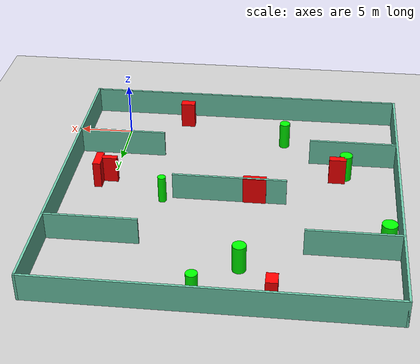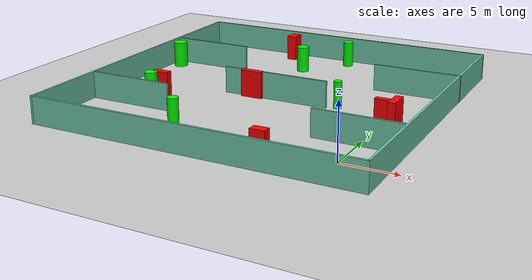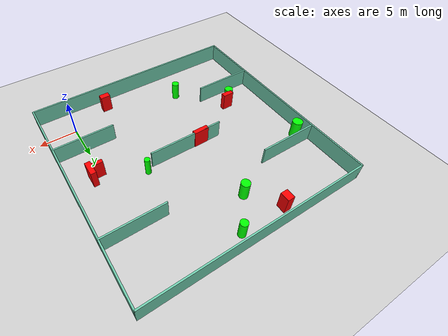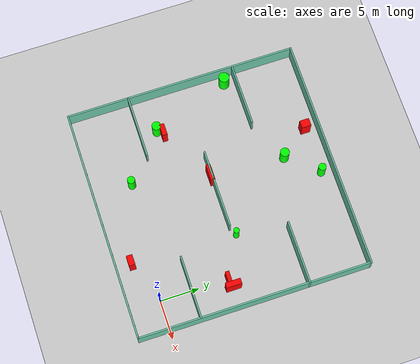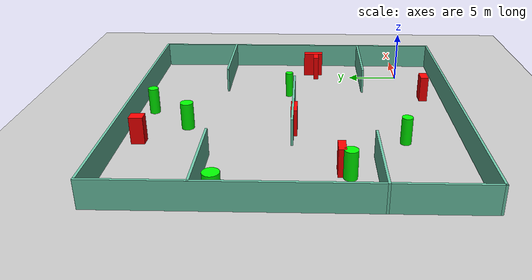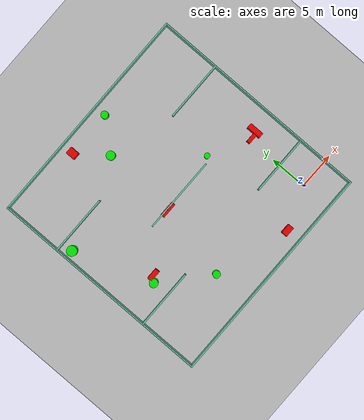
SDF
<sdf version="1.7">
 <world name="default">
  <light name="sun" type="directional">
   <pose>0 0 10 0 -0 0</pose>
   <diffuse>0.8 0.8 0.8 1</diffuse>
   <specular>0.2 0.2 0.2 1</specular>
   <attenuation>
    <range>1000</range>
    <constant>0.9</constant>
    <linear>0.01</linear>
    <quadratic>0.001</quadratic>
   </attenuation>
   <direction>-0.5 0.1 -0.9</direction>
   <spot><inner_angle>0</inner_angle><outer_angle>0</outer_angle><falloff>0</falloff></spot>
  </light>
  <model name="ground_plane">
   <static>1</static>
   <link name="link">
    <collision name="collision">
     <geometry><plane><normal>0 0 1</normal><size>100 100</size></plane></geometry>
     <surface>
      <contact><collide_bitmask>65535</collide_bitmask></contact>
      <friction><ode><mu>100</mu><mu2>50</mu2></ode></friction>
     </surface>
    </collision>
    <visual name="visual">
     <cast_shadows>0</cast_shadows>
     <geometry><plane><normal>0 0 1</normal><size>100 100</size></plane></geometry>
     <material>
      <script><uri>file://media/materials/scripts/gazebo.material</uri><name>Gazebo/Grey</name></script>
     </material>
    </visual>
   </link>
  </model>
  <gravity>0 0 -9.8</gravity>
  <magnetic_field>6e-06 2.3e-05 -4.2e-05</magnetic_field>
  <atmosphere type="adiabatic"/>
  <physics type="ode">
   <max_step_size>0.001</max_step_size>
   <real_time_factor>1</real_time_factor>
   <real_time_update_rate>1000</real_time_update_rate>
  </physics>
  <scene><ambient>0.4 0.4 0.4 1</ambient><background>0.7 0.7 0.7 1</background><shadows>1</shadows></scene>
  <spherical_coordinates>
   <surface_model>EARTH_WGS84</surface_model>
   <latitude_deg>0</latitude_deg>
   <longitude_deg>0</longitude_deg>
   <elevation>0</elevation>
   <heading_deg>0</heading_deg>
  </spherical_coordinates>
  <model name="my_base_walls">
   <link name="Wall_10">
    <collision name="Wall_10_Collision">
     <geometry><box><size>8.2 0.2 2.5</size></box></geometry>
     <pose>0 0 1.25 0 -0 0</pose>
    </collision>
    <visual name="Wall_10_Visual">
     <pose>0 0 1.25 0 -0 0</pose>
     <geometry><box><size>8.2 0.2 2.5</size></box></geometry>
     <material>
      <script><uri>file://media/materials/scripts/gazebo.material</uri><name>Gazebo/Grey</name></script>
      <ambient>0.435294 0.796078 0.67451 1</ambient>
     </material>
     <meta><layer>0</layer></meta>
    </visual>
    <pose>-11 -7 0 0 -0 0</pose>
   </link>
   <link name="Wall_12">
    <collision name="Wall_12_Collision">
     <geometry><box><size>8.2 0.2 2.5</size></box></geometry>
     <pose>0 0 1.25 0 -0 0</pose>
    </collision>
    <visual name="Wall_12_Visual">
     <pose>0 0 1.25 0 -0 0</pose>
     <geometry><box><size>8.2 0.2 2.5</size></box></geometry>
     <material>
      <script><uri>file://media/materials/scripts/gazebo.material</uri><name>Gazebo/Grey</name></script>
      <ambient>0.435294 0.796078 0.67451 1</ambient>
     </material>
     <meta><layer>0</layer></meta>
    </visual>
    <pose>-11 7 0 0 -0 0</pose>
   </link>
   <link name="Wall_14">
    <collision name="Wall_14_Collision">
     <geometry><box><size>8.2 0.2 2.5</size></box></geometry>
     <pose>0 0 1.25 0 -0 0</pose>
    </collision>
    <visual name="Wall_14_Visual">
     <pose>0 0 1.25 0 -0 0</pose>
     <geometry><box><size>8.2 0.2 2.5</size></box></geometry>
     <material>
      <script><uri>file://media/materials/scripts/gazebo.material</uri><name>Gazebo/Grey</name></script>
      <ambient>0.435294 0.796078 0.67451 1</ambient>
     </material>
     <meta><layer>0</layer></meta>
    </visual>
    <pose>11 7 0 0 -0 3.14159</pose>
   </link>
   <link name="Wall_16">
    <collision name="Wall_16_Collision">
     <geometry><box><size>10.2 0.2 2.5</size></box></geometry>
     <pose>0 0 1.25 0 -0 0</pose>
    </collision>
    <visual name="Wall_16_Visual">
     <pose>0 0 1.25 0 -0 0</pose>
     <geometry><box><size>10.2 0.2 2.5</size></box></geometry>
     <material>
      <script><uri>file://media/materials/scripts/gazebo.material</uri><name>Gazebo/Grey</name></script>
      <ambient>0.435294 0.796078 0.67451 1</ambient>
     </material>
     <meta><layer>0</layer></meta>
    </visual>
    <pose>0 0 0 0 -0 3.14159</pose>
   </link>
   <link name="Wall_2">
    <collision name="Wall_2_Collision">
     <geometry><box><size>30.2 0.2 2.5</size></box></geometry>
     <pose>0 0 1.25 0 -0 0</pose>
    </collision>
    <visual name="Wall_2_Visual">
     <pose>0 0 1.25 0 -0 0</pose>
     <geometry><box><size>30.2 0.2 2.5</size></box></geometry>
     <material>
      <script><uri>file://media/materials/scripts/gazebo.material</uri><name>Gazebo/Grey</name></script>
      <ambient>0.435294 0.796078 0.67451 1</ambient>
     </material>
     <meta><layer>0</layer></meta>
    </visual>
    <pose>0 -15 0 0 -0 3.14159</pose>
   </link>
   <link name="Wall_3">
    <collision name="Wall_3_Collision">
     <geometry><box><size>30.2 0.2 2.5</size></box></geometry>
     <pose>0 0 1.25 0 -0 0</pose>
    </collision>
    <visual name="Wall_3_Visual">
     <pose>0 0 1.25 0 -0 0</pose>
     <geometry><box><size>30.2 0.2 2.5</size></box></geometry>
     <material>
      <script><uri>file://media/materials/scripts/gazebo.material</uri><name>Gazebo/Grey</name></script>
      <ambient>0.435294 0.796078 0.67451 1</ambient>
     </material>
     <meta><layer>0</layer></meta>
    </visual>
    <pose>-15 0 0 0 -0 1.5708</pose>
   </link>
   <link name="Wall_4">
    <collision name="Wall_4_Collision">
     <geometry><box><size>30.2 0.2 2.5</size></box></geometry>
     <pose>0 0 1.25 0 -0 0</pose>
    </collision>
    <visual name="Wall_4_Visual">
     <pose>0 0 1.25 0 -0 0</pose>
     <geometry><box><size>30.2 0.2 2.5</size></box></geometry>
     <material>
      <script><uri>file://media/materials/scripts/gazebo.material</uri><name>Gazebo/Grey</name></script>
      <ambient>0.435294 0.796078 0.67451 1</ambient>
     </material>
     <meta><layer>0</layer></meta>
    </visual>
    <pose>0 15 0 0 -0 0</pose>
   </link>
   <link name="Wall_6">
    <collision name="Wall_6_Collision">
     <geometry><box><size>30.2 0.2 2.5</size></box></geometry>
     <pose>0 0 1.25 0 -0 0</pose>
    </collision>
    <visual name="Wall_6_Visual">
     <pose>0 0 1.25 0 -0 0</pose>
     <geometry><box><size>30.2 0.2 2.5</size></box></geometry>
     <material>
      <script><uri>file://media/materials/scripts/gazebo.material</uri><name>Gazebo/Grey</name></script>
      <ambient>0.435294 0.796078 0.67451 1</ambient>
     </material>
     <meta><layer>0</layer></meta>
    </visual>
    <pose>15 0 0 0 -0 1.5708</pose>
   </link>
   <link name="Wall_8">
    <collision name="Wall_8_Collision">
     <geometry><box><size>8.2 0.2 2.5</size></box></geometry>
     <pose>0 0 1.25 0 -0 0</pose>
    </collision>
    <visual name="Wall_8_Visual">
     <pose>0 0 1.25 0 -0 0</pose>
     <geometry><box><size>8.2 0.2 2.5</size></box></geometry>
     <material>
      <script><uri>file://media/materials/scripts/gazebo.material</uri><name>Gazebo/Grey</name></script>
      <ambient>0.435294 0.796078 0.67451 1</ambient>
     </material>
     <meta><layer>0</layer></meta>
    </visual>
    <pose>11 -7 0 0 -0 3.14159</pose>
   </link>
   <static>1</static>
   <pose>-11 11 0 0 -0 0</pose>
  </model>
  <model name="cylinder1">
   <static>1</static>
   <link name="link">
    <inertial>
     <mass>1</mass>
     <inertia><ixx>0.5</ixx><ixy>0</ixy><ixz>0</ixz><iyy>0.5</iyy><iyz>0</iyz><izz>1</izz></inertia>
    </inertial>
    <collision name="collision">
     <geometry><cylinder><radius>0.577838131795787</radius><length>2.5</length></cylinder></geometry>
    </collision>
    <visual name="visual">
     <geometry><cylinder><radius>0.577838131795787</radius><length>2.5</length></cylinder></geometry>
     <material>
      <ambient>0 1 0 1</ambient>
      <diffuse>0 1 0 1</diffuse>
      <specular>0.1 0.1 0.1 1</specular>
      <emissive>0 0 0 0</emissive>
     </material>
    </visual>
   </link>
   <pose>-21.28635584616646 6.295024676102432 1.25 0 0 0</pose>
  </model>
  <model name="cylinder2">
   <static>1</static>
   <link name="link">
    <inertial>
     <mass>1</mass>
     <inertia><ixx>0.5</ixx><ixy>0</ixy><ixz>0</ixz><iyy>0.5</iyy><iyz>0</iyz><izz>1</izz></inertia>
    </inertial>
    <collision name="collision">
     <geometry><cylinder><radius>0.6755026305995573</radius><length>2.5</length></cylinder></geometry>
    </collision>
    <visual name="visual">
     <geometry><cylinder><radius>0.6755026305995573</radius><length>2.5</length></cylinder></geometry>
     <material>
      <ambient>0 1 0 1</ambient>
      <diffuse>0 1 0 1</diffuse>
      <specular>0.1 0.1 0.1 1</specular>
      <emissive>0 0 0 0</emissive>
     </material>
    </visual>
   </link>
   <pose>-24.868691661851226 16.55047769824798 1.25 0 0 0</pose>
  </model>
  <model name="cylinder3">
   <static>1</static>
   <link name="link">
    <inertial>
     <mass>1</mass>
     <inertia><ixx>0.5</ixx><ixy>0</ixy><ixz>0</ixz><iyy>0.5</iyy><iyz>0</iyz><izz>1</izz></inertia>
    </inertial>
    <collision name="collision">
     <geometry><cylinder><radius>0.5834756766172156</radius><length>2.5</length></cylinder></geometry>
    </collision>
    <visual name="visual">
     <geometry><cylinder><radius>0.5834756766172156</radius><length>2.5</length></cylinder></geometry>
     <material>
      <ambient>0 1 0 1</ambient>
      <diffuse>0 1 0 1</diffuse>
      <specular>0.1 0.1 0.1 1</specular>
      <emissive>0 0 0 0</emissive>
     </material>
    </visual>
   </link>
   <pose>-12.804406371405086 20.61716614733745 1.25 0 0 0</pose>
  </model>
  <model name="cylinder4">
   <static>1</static>
   <link name="link">
    <inertial>
     <mass>1</mass>
     <inertia><ixx>0.5</ixx><ixy>0</ixy><ixz>0</ixz><iyy>0.5</iyy><iyz>0</iyz><izz>1</izz></inertia>
    </inertial>
    <collision name="collision">
     <geometry><cylinder><radius>0.3667335242690395</radius><length>2.5</length></cylinder></geometry>
    </collision>
    <visual name="visual">
     <geometry><cylinder><radius>0.3667335242690395</radius><length>2.5</length></cylinder></geometry>
     <material>
      <ambient>0 1 0 1</ambient>
      <diffuse>0 1 0 1</diffuse>
      <specular>0.1 0.1 0.1 1</specular>
      <emissive>0 0 0 0</emissive>
     </material>
    </visual>
   </link>
   <pose>-5.046944566420613 11.563949356899979 1.25 0 0 0</pose>
  </model>
  <model name="cylinder5">
   <static>1</static>
   <link name="link">
    <inertial>
     <mass>1</mass>
     <inertia><ixx>0.5</ixx><ixy>0</ixy><ixz>0</ixz><iyy>0.5</iyy><iyz>0</iyz><izz>1</izz></inertia>
    </inertial>
    <collision name="collision">
     <geometry><cylinder><radius>0.48666996521660777</radius><length>2.5</length></cylinder></geometry>
    </collision>
    <visual name="visual">
     <geometry><cylinder><radius>0.48666996521660777</radius><length>2.5</length></cylinder></geometry>
     <material>
      <ambient>0 1 0 1</ambient>
      <diffuse>0 1 0 1</diffuse>
      <specular>0.1 0.1 0.1 1</specular>
      <emissive>0 0 0 0</emissive>
     </material>
    </visual>
   </link>
   <pose>-15.392036759427677 1.1125068633052058 1.25 0 0 0</pose>
  </model>
  <model name="cylinder6">
   <static>1</static>
   <link name="link">
    <inertial>
     <mass>1</mass>
     <inertia><ixx>0.5</ixx><ixy>0</ixy><ixz>0</ixz><iyy>0.5</iyy><iyz>0</iyz><izz>1</izz></inertia>
    </inertial>
    <collision name="collision">
     <geometry><cylinder><radius>0.48807632131644263</radius><length>2.5</length></cylinder></geometry>
    </collision>
    <visual name="visual">
     <geometry><cylinder><radius>0.48807632131644263</radius><length>2.5</length></cylinder></geometry>
     <material>
      <ambient>0 1 0 1</ambient>
      <diffuse>0 1 0 1</diffuse>
      <specular>0.1 0.1 0.1 1</specular>
      <emissive>0 0 0 0</emissive>
     </material>
    </visual>
   </link>
   <pose>-9.488028645240234 24.461081410456913 1.25 0 0 0</pose>
  </model>
  <model name="box1">
   <static>1</static>
   <link name="link">
    <inertial>
     <mass>1</mass>
     <inertia><ixx>0.083</ixx><ixy>0</ixy><ixz>0</ixz><iyy>0.083</iyy><iyz>0</iyz><izz>0.083</izz></inertia>
    </inertial>
    <collision name="collision">
     <geometry><box><size>0.7025118786147131 1.9710586920414839 2.5</size></box></geometry>
    </collision>
    <visual name="visual">
     <geometry><box><size>0.7025118786147131 1.9710586920414839 2.5</size></box></geometry>
     <material>
      <ambient>1 0 0 1</ambient>
      <diffuse>1 0 0 1</diffuse>
      <specular>0.1 0.1 0.1 1</specular>
      <emissive>0 0 0 0</emissive>
     </material>
    </visual>
    <sensor name="my_contact" type="contact">
     <contact><collision>box_collision</collision><topic>__default_topic__</topic></contact>
    </sensor>
   </link>
   <pose>1.1720972139310675 9.088979155637057 1.25 0 0 0</pose>
  </model>
  <model name="box2">
   <static>1</static>
   <link name="link">
    <inertial>
     <mass>1</mass>
     <inertia><ixx>0.083</ixx><ixy>0</ixy><ixz>0</ixz><iyy>0.083</iyy><iyz>0</iyz><izz>0.083</izz></inertia>
    </inertial>
    <collision name="collision">
     <geometry><box><size>1.532161234006696 0.6420770019590929 2.5</size></box></geometry>
    </collision>
    <visual name="visual">
     <geometry><box><size>1.532161234006696 0.6420770019590929 2.5</size></box></geometry>
     <material>
      <ambient>1 0 0 1</ambient>
      <diffuse>1 0 0 1</diffuse>
      <specular>0.1 0.1 0.1 1</specular>
      <emissive>0 0 0 0</emissive>
     </material>
    </visual>
    <sensor name="my_contact" type="contact">
     <contact><collision>box_collision</collision><topic>__default_topic__</topic></contact>
    </sensor>
   </link>
   <pose>-20.53763593675525 6.97018510133603 1.25 0 0 0</pose>
  </model>
  <model name="box3">
   <static>1</static>
   <link name="link">
    <inertial>
     <mass>1</mass>
     <inertia><ixx>0.083</ixx><ixy>0</ixy><ixz>0</ixz><iyy>0.083</iyy><iyz>0</iyz><izz>0.083</izz></inertia>
    </inertial>
    <collision name="collision">
     <geometry><box><size>1.3809324408429613 0.5036149738929323 2.5</size></box></geometry>
    </collision>
    <visual name="visual">
     <geometry><box><size>1.3809324408429613 0.5036149738929323 2.5</size></box></geometry>
     <material>
      <ambient>1 0 0 1</ambient>
      <diffuse>1 0 0 1</diffuse>
      <specular>0.1 0.1 0.1 1</specular>
      <emissive>0 0 0 0</emissive>
     </material>
    </visual>
    <sensor name="my_contact" type="contact">
     <contact><collision>box_collision</collision><topic>__default_topic__</topic></contact>
    </sensor>
   </link>
   <pose>0.2076524573933014 8.785112834086227 1.25 0 0 0</pose>
  </model>
  <model name="box4">
   <static>1</static>
   <link name="link">
    <inertial>
     <mass>1</mass>
     <inertia><ixx>0.083</ixx><ixy>0</ixy><ixz>0</ixz><iyy>0.083</iyy><iyz>0</iyz><izz>0.083</izz></inertia>
    </inertial>
    <collision name="collision">
     <geometry><box><size>2.064099364100212 0.5768836773297912 2.5</size></box></geometry>
    </collision>
    <visual name="visual">
     <geometry><box><size>2.064099364100212 0.5768836773297912 2.5</size></box></geometry>
     <material>
      <ambient>1 0 0 1</ambient>
      <diffuse>1 0 0 1</diffuse>
      <specular>0.1 0.1 0.1 1</specular>
      <emissive>0 0 0 0</emissive>
     </material>
    </visual>
    <sensor name="my_contact" type="contact">
     <contact><collision>box_collision</collision><topic>__default_topic__</topic></contact>
    </sensor>
   </link>
   <pose>-13.2602719805732 10.87849734889236 1.25 0 0 0</pose>
  </model>
  <model name="box5">
   <static>1</static>
   <link name="link">
    <inertial>
     <mass>1</mass>
     <inertia><ixx>0.083</ixx><ixy>0</ixy><ixz>0</ixz><iyy>0.083</iyy><iyz>0</iyz><izz>0.083</izz></inertia>
    </inertial>
    <collision name="collision">
     <geometry><box><size>1.3318471507704843 0.7881774688894816 2.5</size></box></geometry>
    </collision>
    <visual name="visual">
     <geometry><box><size>1.3318471507704843 0.7881774688894816 2.5</size></box></geometry>
     <material>
      <ambient>1 0 0 1</ambient>
      <diffuse>1 0 0 1</diffuse>
      <specular>0.1 0.1 0.1 1</specular>
      <emissive>0 0 0 0</emissive>
     </material>
    </visual>
    <sensor name="my_contact" type="contact">
     <contact><collision>box_collision</collision><topic>__default_topic__</topic></contact>
    </sensor>
   </link>
   <pose>-5.529930948366276 -2.0004547807261464 1.25 0 0 0</pose>
  </model>
  <model name="box6">
   <static>1</static>
   <link name="link">
    <inertial>
     <mass>1</mass>
     <inertia><ixx>0.083</ixx><ixy>0</ixy><ixz>0</ixz><iyy>0.083</iyy><iyz>0</iyz><izz>0.083</izz></inertia>
    </inertial>
    <collision name="collision">
     <geometry><box><size>0.984106423203428 1.2222515726309104 2.5</size></box></geometry>
    </collision>
    <visual name="visual">
     <geometry><box><size>0.984106423203428 1.2222515726309104 2.5</size></box></geometry>
     <material>
      <ambient>1 0 0 1</ambient>
      <diffuse>1 0 0 1</diffuse>
      <specular>0.1 0.1 0.1 1</specular>
      <emissive>0 0 0 0</emissive>
     </material>
    </visual>
    <sensor name="my_contact" type="contact">
     <contact><collision>box_collision</collision><topic>__default_topic__</topic></contact>
    </sensor>
   </link>
   <pose>-15.665479064555178 24.37096880536931 1.25 0 0 0</pose>
  </model>
 </world>
</sdf>
